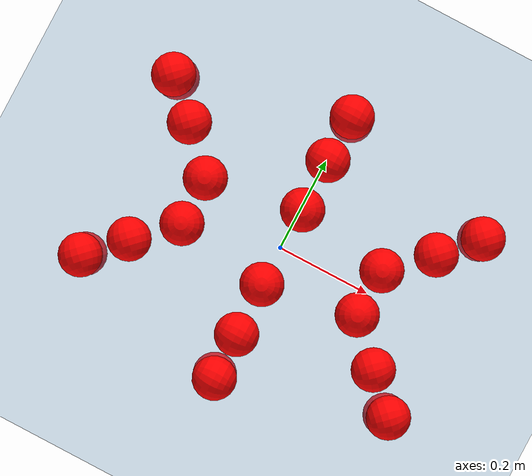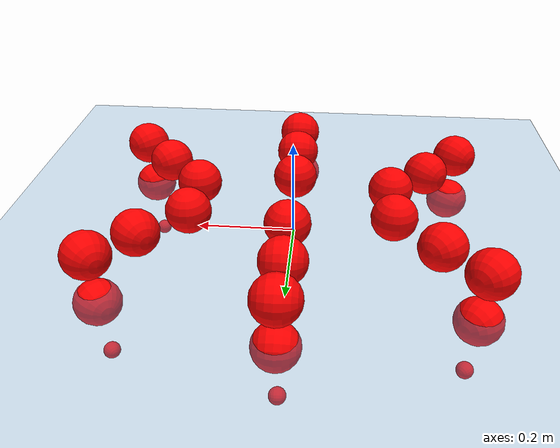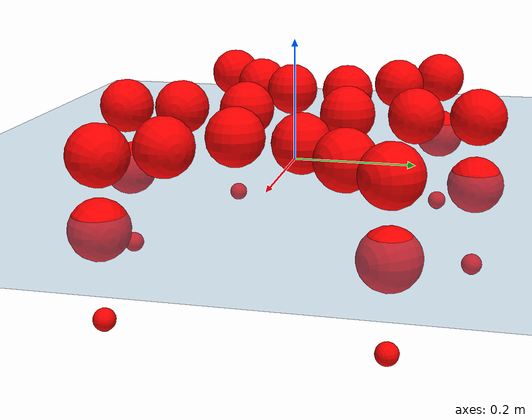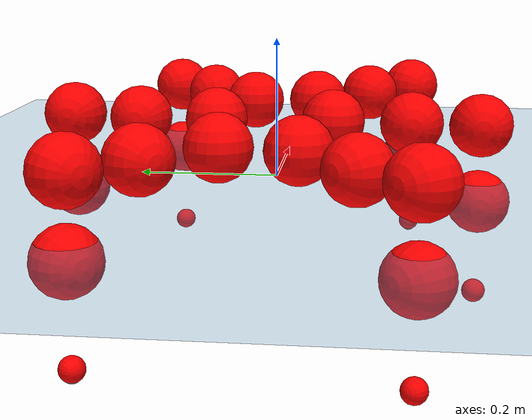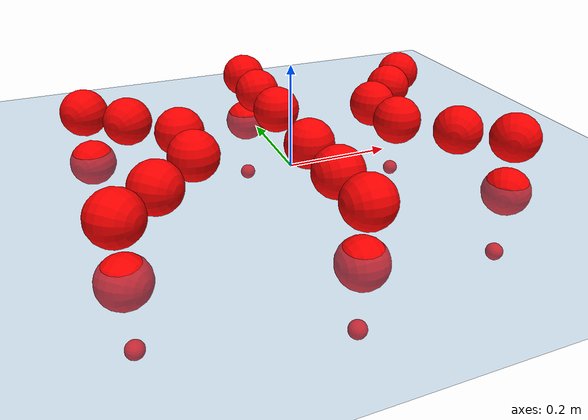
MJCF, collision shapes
<mujoco model="Golem">
  <compiler angle="radian" assetdir="assets" balanceinertia="true" inertiafromgeom="false"/>

  <option timestep="0.005" density="1.2" viscosity="2e-05"/>

  <size nkey="1"/>

  <visual>
    <quality shadowsize="8192"/>
    <map shadowclip="0.5"/>
  </visual>

  <default>
    <default class="/">
      <joint armature="0.01" damping="0.01" frictionloss="0.01"/>
      <geom contype="0" conaffinity="0" group="1" solref="-1000 -80"/>
      <site size="0.01 0.005 0.005" group="5"/>
      <general forcelimited="true" biastype="affine" gainprm="25" biasprm="0 -25 -0.5"/>
      <default class="visual">
        <geom type="mesh" group="2"/>
      </default>
      <default class="collision">
        <geom group="3"/>
      </default>
      <default class="foot">
        <geom size="0.01 0 0" condim="6" group="4" priority="1" solimp="0.015 1 0.01"/>
      </default>
      <default class="reward_collision_sphere">
        <geom group="5" rgba="1 0 0 1"/>
      </default>
    </default>
  </default>

  <asset>
    <texture type="skybox" colorspace="auto" name="//unnamed_texture_0" builtin="gradient" rgb1="0.95 0.95 0.95" rgb2="0.95 0.95 0.95" width="100" height="600"/>
    <texture type="2d" colorspace="auto" name="texplane" builtin="checker" rgb1="0.345 0.575 0.748" rgb2="0.345 0.575 0.748" markrgb="1 1 1" width="512" height="512"/>
    <material name="MatPlane" class="/" texture="texplane" texuniform="true" texrepeat="2 2" specular="0.9"/>
    <mesh name="body" class="/" file="body.stl" scale="0.001 0.001 0.001"/>
    <mesh name="coxa" class="/" file="coxa.stl" scale="0.001 0.001 0.001"/>
    <mesh name="femur" class="/" file="femur.stl" scale="0.001 0.001 0.001"/>
    <mesh name="tibia" class="/" file="tibia.stl" scale="0.001 0.001 0.001"/>
    <mesh name="tarsus" class="/" file="tarsus.stl" scale="0.001 0.001 0.001"/>
  </asset>

  <worldbody>
    <geom name="floor" class="/" size="100 100 0.125" type="plane" group="0" material="MatPlane"/>
    <light name="toplight_shadow" class="/" pos="0 0 5" dir="0.0990148 0.0990148 -0.990148" type="directional" ambient="0.04 0.04 0.04" diffuse="0.55 0.55 0.55" specular="0.12 0.12 0.12"/>
    <light name="toplight_fill" class="/" pos="0 0 5" dir="0.0990148 0.0990148 -0.990148" type="directional" castshadow="false" ambient="0.04 0.04 0.04" diffuse="0.3 0.3 0.3" specular="0.08 0.08 0.08"/>
    <body name="trunk" pos="0.00182657 0.0027499 0.00260109" quat="1 1.99385e-06 7.54824e-05 -6.82609e-05">
      <inertial pos="0.00104478 -0.000577239 -0.00154056" quat="0.999998 -0.000560886 -0.000444025 -0.00160272" mass="5.45701" diaginertia="0.0305984 0.00696981 0.0259717"/>
      <joint name="//unnamed_joint_0" type="free"/>
      <geom name="//unnamed_geom_1" class="/" pos="0 0 0.0773782" quat="1 0 0 0" type="mesh" rgba="0.9 0.9 0.9 1" mesh="body"/>
      <site name="imu" class="/" pos="0.175414 0.0118045 0.125517" size="0.0113423"/>
      <camera name="track" class="/" pos="0 -1.85772 0" quat="0.707107 0.707107 0 0" mode="trackcom"/>
      <camera name="ego_camera" class="/" pos="0.164423 0 0.120903" quat="-0.5 -0.5 0.5 0.5"/>
      <body name="coxa_RR" pos="-0.225406 -0.0784034 0.0774361" quat="0.38264 -0.00034953 -0.000151742 -0.923897">
        <inertial pos="-0.000508399 -0.00147078 -0.00175913" quat="0.9999 0.00866932 -0.007455 0.00831868" mass="0.285298" diaginertia="0.0311124 0.0066472 0.0248541"/>
        <joint name="coxa_joint_RR" class="/" pos="0 0 0" axis="0.00588592 0.00225314 -0.99998" range="-3.14031 3.14703" armature="0.0100211" damping="0" frictionloss="0.0112314"/>
        <geom name="//unnamed_geom_2" class="/" type="mesh" rgba="0.2 0.2 0.2 1" mesh="coxa"/>
        <geom name="//unnamed_geom_3" class="reward_collision_sphere" size="0.0453691" pos="-0.0379438 0 0"/>
        <body name="femur_RR" pos="0.0728254 -0.00154404 -0.00469998" quat="0.500163 -0.499971 0.500011 0.499855">
          <inertial pos="-0.00241815 -0.00182663 4.46153e-05" quat="0.999986 -0.00408162 -0.0030715 0.00102122" mass="0.294168" diaginertia="0.0326592 0.00703373 0.0263381"/>
          <joint name="femur_joint_RR" class="/" pos="0 0 0" axis="-0.00362195 -0.000454532 -0.999993" range="-3.18755 3.08206" armature="0.0110326" damping="0.00939479" frictionloss="0.0127998"/>
          <geom name="//unnamed_geom_4" class="/" type="mesh" rgba="0.9 0.9 0.9 1" mesh="femur"/>
          <geom name="//unnamed_geom_5" class="reward_collision_sphere" size="0.0453691"/>
          <body name="tibia_RR" pos="-0.00391399 -0.102408 0.00169757" quat="3.16031e-06 1 -0.000741246 -5.45871e-06">
            <inertial pos="-0.00242435 3.62233e-05 0.000464658" quat="0.999999 -0.000911996 -0.000625357 -0.000402173" mass="0.291336" diaginertia="0.031658 0.00661862 0.024066"/>
            <joint name="tibia_joint_RR" class="/" pos="0 0 0" axis="0.00778919 -0.00826805 0.999935" range="-3.09586 3.1946" armature="0.0116984" damping="0.00120473" frictionloss="0.0113237"/>
            <geom name="//unnamed_geom_6" class="/" type="mesh" rgba="0.2 0.2 0.2 1" mesh="tibia"/>
            <geom name="//unnamed_geom_7" class="reward_collision_sphere" size="0.0453691"/>
            <body name="tarsus_RR" pos="0.113164 -0.000639655 0.0019214" quat="1 -9.5625e-05 -9.78231e-05 1.34591e-05">
              <inertial pos="0.0788671 0.000343315 0.00237056" quat="0.499571 0.500093 0.498617 0.501715" mass="0.295657" diaginertia="0.0326861 0.00712562 0.02623"/>
              <joint name="tarsus_joint_RR" class="/" pos="0 0 0" axis="-0.00656083 -0.000847517 0.999978" range="-3.18739 3.19539" armature="0.0109551" damping="0.0365782" frictionloss="0.00999519"/>
              <geom name="//unnamed_geom_8" class="/" type="mesh" rgba="0.9 0.9 0.9 1" mesh="tarsus"/>
              <geom name="foot_1" class="foot" size="0.0113312" pos="0.141657 0 0" quat="0 -0.707107 0 0.707107"/>
              <geom name="//unnamed_geom_10" class="reward_collision_sphere" size="0.0453691"/>
              <geom name="//unnamed_geom_11" class="reward_collision_sphere" size="0.0170134" pos="0.135965 0 0"/>
              <site name="foot_1" class="foot" pos="0.141657 0 0" quat="0 -0.707107 0 0.707107" size="0.0113423"/>
            </body>
          </body>
        </body>
      </body>
      <body name="coxa_RM" pos="-7.87294e-05 -0.122265 0.0794778" quat="0.70691 0.000685417 0.00121159 -0.707302">
        <inertial pos="0.00291746 0.000248922 -0.00206825" quat="0.999938 -0.0077713 0.00791167 -0.00139644" mass="0.284725" diaginertia="0.0314001 0.00678736 0.0268109"/>
        <joint name="coxa_joint_RM" class="/" pos="0 0 0" axis="-0.000760523 1.13251e-05 -1" stiffness="0.00695072" range="-3.17336 3.1317" armature="0.0111581" damping="0.00163988" frictionloss="0.0108265"/>
        <geom name="//unnamed_geom_12" class="/" type="mesh" rgba="0.2 0.2 0.2 1" mesh="coxa"/>
        <geom name="//unnamed_geom_13" class="reward_collision_sphere" size="0.0453691" pos="-0.0379438 0 0"/>
        <body name="femur_RM" pos="0.0744346 0.00232579 -0.00132953" quat="0.499403 -0.500253 0.49966 0.500683">
          <inertial pos="0.000191376 -0.00218118 -0.00010591" quat="0.999972 -0.00641828 -0.00230123 -0.00300498" mass="0.299488" diaginertia="0.0328997 0.00680899 0.0264781"/>
          <joint name="femur_joint_RM" class="/" pos="0 0 0" axis="0.0128516 0.00417946 -0.999909" stiffness="0.00914893" range="-3.16103 3.13845" armature="0.0100417" damping="0.0276819" frictionloss="0.0114404"/>
          <geom name="//unnamed_geom_14" class="/" type="mesh" rgba="0.9 0.9 0.9 1" mesh="femur"/>
          <geom name="//unnamed_geom_15" class="reward_collision_sphere" size="0.0453691"/>
          <body name="tibia_RM" pos="0.00124656 -0.0983276 0.00144746" quat="-2.11072e-05 1 -0.000255058 0.000137093">
            <inertial pos="0.00286733 -0.00171361 -0.000335979" quat="0.999934 -0.00653652 -0.00875553 -0.00353274" mass="0.277382" diaginertia="0.0316294 0.00689435 0.0255198"/>
            <joint name="tibia_joint_RM" class="/" pos="0 0 0" axis="0.000368843 -0.000246163 1" range="-3.18553 3.158" armature="0.0113209" damping="0.013576" frictionloss="0.0114411"/>
            <geom name="//unnamed_geom_16" class="/" type="mesh" rgba="0.2 0.2 0.2 1" mesh="tibia"/>
            <geom name="//unnamed_geom_17" class="reward_collision_sphere" size="0.0453691"/>
            <body name="tarsus_RM" pos="0.110507 -0.00015198 0.00313094" quat="1 5.46962e-05 0.000231131 -9.40958e-06">
              <inertial pos="0.0765829 -0.0024563 0.0029455" quat="0.499759 0.499916 0.494256 0.505999" mass="0.298973" diaginertia="0.031502 0.006696 0.0250332"/>
              <joint name="tarsus_joint_RM" class="/" pos="0 0 0" axis="0.00203933 0.00163137 0.999997" range="-3.08311 3.12372" armature="0.0124834" damping="0.0130573" frictionloss="0.0110695"/>
              <geom name="//unnamed_geom_18" class="/" type="mesh" rgba="0.9 0.9 0.9 1" mesh="tarsus"/>
              <geom name="foot_2" class="foot" size="0.0116675" pos="0.141657 0 0" quat="0 -0.707107 0 0.707107"/>
              <geom name="//unnamed_geom_20" class="reward_collision_sphere" size="0.0453691"/>
              <geom name="//unnamed_geom_21" class="reward_collision_sphere" size="0.0170134" pos="0.135965 0 0"/>
              <site name="foot_2" class="foot" pos="0.141657 0 0" quat="0 -0.707107 0 0.707107" size="0.0113423"/>
            </body>
          </body>
        </body>
      </body>
      <body name="coxa_RF" pos="0.224144 -0.0757161 0.0792451" quat="0.923928 0.000423447 0.000405046 -0.382565">
        <inertial pos="-0.00083125 0.00265991 -0.00050099" quat="0.999999 -4.45442e-05 -0.000930466 0.00114923" mass="0.288501" diaginertia="0.0324386 0.00699194 0.0249741"/>
        <joint name="coxa_joint_RF" class="/" pos="0 0 0" axis="0.00287829 -0.000927992 -0.999995" range="-3.1492 3.14642" armature="0.0127873" damping="0.0115633" frictionloss="0.0107974"/>
        <geom name="//unnamed_geom_22" class="/" type="mesh" rgba="0.2 0.2 0.2 1" mesh="coxa"/>
        <geom name="//unnamed_geom_23" class="reward_collision_sphere" size="0.0453691" pos="-0.0379438 0 0"/>
        <body name="femur_RF" pos="0.0769119 -0.00144722 -0.000201291" quat="0.500329 -0.49937 0.500411 0.499889">
          <inertial pos="0.00205923 -0.00292627 -0.000778519" quat="0.999946 -0.00391128 0.000664845 0.00955865" mass="0.282232" diaginertia="0.0323378 0.00647891 0.0257422"/>
          <joint name="femur_joint_RF" class="/" pos="0 0 0" axis="9.46304e-05 -2.86966e-05 -1" stiffness="0.00424362" range="-3.17325 3.16032" armature="0.00981172" damping="0.0100507" frictionloss="0.0128924"/>
          <geom name="//unnamed_geom_24" class="/" type="mesh" rgba="0.9 0.9 0.9 1" mesh="femur"/>
          <geom name="//unnamed_geom_25" class="reward_collision_sphere" size="0.0453691"/>
          <body name="tibia_RF" pos="-0.00243717 -0.100375 0.000742017" quat="-5.72772e-05 1 1.63411e-05 -7.25339e-05">
            <inertial pos="-0.00122004 0.00083596 7.65379e-05" quat="1 -0.000280206 -0.000808113 -0.000145938" mass="0.299413" diaginertia="0.0312431 0.0071544 0.025534"/>
            <joint name="tibia_joint_RF" class="/" pos="0 0 0" axis="0.00621422 0.00408802 0.999972" range="-3.14962 3.10636" armature="0.0105096" damping="0.0051082" frictionloss="0.0112412"/>
            <geom name="//unnamed_geom_26" class="/" type="mesh" rgba="0.2 0.2 0.2 1" mesh="tibia"/>
            <geom name="//unnamed_geom_27" class="reward_collision_sphere" size="0.0453691"/>
            <body name="tarsus_RF" pos="0.107902 0.0016806 0.00303369" quat="1 0.000498352 -0.000825701 -0.000232924">
              <inertial pos="0.0753666 -4.01615e-05 4.56625e-05" quat="0.50141 0.501133 0.497855 0.499594" mass="0.294661" diaginertia="0.0320893 0.00690571 0.0266202"/>
              <joint name="tarsus_joint_RF" class="/" pos="0 0 0" axis="0.00209883 -0.0151964 0.999882" range="-3.1765 3.13061" armature="0.0128551" damping="0.0143508" frictionloss="0.00993088"/>
              <geom name="//unnamed_geom_28" class="/" type="mesh" rgba="0.9 0.9 0.9 1" mesh="tarsus"/>
              <geom name="foot_3" class="foot" size="0.0124194" pos="0.141657 0 0" quat="0 -0.707107 0 0.707107"/>
              <geom name="//unnamed_geom_30" class="reward_collision_sphere" size="0.0453691"/>
              <geom name="//unnamed_geom_31" class="reward_collision_sphere" size="0.0170134" pos="0.135965 0 0"/>
              <site name="foot_3" class="foot" pos="0.141657 0 0" quat="0 -0.707107 0 0.707107" size="0.0113423"/>
            </body>
          </body>
        </body>
      </body>
      <body name="coxa_LR" pos="-0.226594 0.0775645 0.079239" quat="0.382494 6.44223e-05 -0.000304524 0.923958">
        <inertial pos="-0.00194861 0.00216916 -0.000747283" quat="0.999968 0.00157694 0.00506563 -0.00598225" mass="0.291381" diaginertia="0.033377 0.00724761 0.0271403"/>
        <joint name="coxa_joint_LR" class="/" pos="0 0 0" axis="-0.00721135 0.00928826 -0.999931" stiffness="0.0113153" range="-3.15389 3.08799" armature="0.00978614" damping="0" frictionloss="0.00982626"/>
        <geom name="//unnamed_geom_32" class="/" type="mesh" rgba="0.2 0.2 0.2 1" mesh="coxa"/>
        <geom name="//unnamed_geom_33" class="reward_collision_sphere" size="0.0453691" pos="-0.0379438 0 0"/>
        <body name="femur_LR" pos="0.0785973 -0.00241252 -8.04426e-05" quat="0.499852 -0.499922 0.500306 0.499919">
          <inertial pos="-0.00165868 -0.00114064 0.000843906" quat="0.999912 -0.00829336 -0.00497824 0.00907942" mass="0.291297" diaginertia="0.0325439 0.00713851 0.0261457"/>
          <joint name="femur_joint_LR" class="/" pos="0 0 0" axis="-0.0103548 0.00936808 0.999903" range="-3.12069 3.15853" armature="0.0112641" damping="0" frictionloss="0.0105726"/>
          <geom name="//unnamed_geom_34" class="/" type="mesh" rgba="0.9 0.9 0.9 1" mesh="femur"/>
          <geom name="//unnamed_geom_35" class="reward_collision_sphere" size="0.0453691"/>
          <body name="tibia_LR" pos="-0.00211181 -0.100436 0.00193755" quat="0.000744696 0.999999 -0.000362303 0.000762682">
            <inertial pos="-0.000683056 -0.000684095 0.000514461" quat="0.999995 -0.0025821 0.00170408 0.000363798" mass="0.305497" diaginertia="0.0330282 0.00705173 0.026957"/>
            <joint name="tibia_joint_LR" class="/" pos="0 0 0" axis="0.0116807 0.000446635 -0.999932" range="-3.19047 3.08526" armature="0.0118751" damping="0.00126274" frictionloss="0.0107696"/>
            <geom name="//unnamed_geom_36" class="/" type="mesh" rgba="0.2 0.2 0.2 1" mesh="tibia"/>
            <geom name="//unnamed_geom_37" class="reward_collision_sphere" size="0.0453691"/>
            <body name="tarsus_LR" pos="0.109685 0.000650036 0.00293881" quat="0.999999 -0.000711802 0.000294167 0.000660236">
              <inertial pos="0.077878 0.000196276 -0.00139267" quat="0.501352 0.497967 0.499736 0.500939" mass="0.285722" diaginertia="0.033055 0.00677024 0.0265474"/>
              <joint name="tarsus_joint_LR" class="/" pos="0 0 0" axis="0.00747527 -0.00503823 -0.999959" range="-3.19059 3.0884" armature="0.010771" damping="0" frictionloss="0.0121827"/>
              <geom name="//unnamed_geom_38" class="/" type="mesh" rgba="0.9 0.9 0.9 1" mesh="tarsus"/>
              <geom name="foot_4" class="foot" size="0.01259" pos="0.141657 0 0" quat="0.707107 0 -0.707107 0"/>
              <geom name="//unnamed_geom_40" class="reward_collision_sphere" size="0.0453691"/>
              <geom name="//unnamed_geom_41" class="reward_collision_sphere" size="0.0170134" pos="0.135965 0 0"/>
              <site name="foot_4" class="foot" pos="0.141657 0 0" quat="0.707107 0 -0.707107 0" size="0.0113423"/>
            </body>
          </body>
        </body>
      </body>
      <body name="coxa_LM" pos="0.00230987 0.123685 0.0796352" quat="0.707992 0.00059361 -0.000350239 0.70622">
        <inertial pos="0.000955136 -0.00157303 -0.00160944" quat="0.9999 0.0122256 0.0026057 0.00656019" mass="0.285887" diaginertia="0.0307053 0.00670206 0.0254404"/>
        <joint name="coxa_joint_LM" class="/" pos="0 0 0" axis="0.00341388 0.00186029 -0.999992" range="-3.08812 3.11884" armature="0.0125907" damping="0.0241142" frictionloss="0.0128673"/>
        <geom name="//unnamed_geom_42" class="/" type="mesh" rgba="0.2 0.2 0.2 1" mesh="coxa"/>
        <geom name="//unnamed_geom_43" class="reward_collision_sphere" size="0.0453691" pos="-0.0379438 0 0"/>
        <body name="femur_LM" pos="0.0733719 0.00192604 0.00108502" quat="0.499699 -0.499263 0.500006 0.50103">
          <inertial pos="0.00238898 -0.00267595 0.00126783" quat="0.999957 -0.00831751 -0.00355127 0.00222411" mass="0.293901" diaginertia="0.0336747 0.0068878 0.0265992"/>
          <joint name="femur_joint_LM" class="/" pos="0 0 0" axis="0.0154402 -0.00170079 0.999879" range="-3.14605 3.08597" armature="0.0127627" damping="0" frictionloss="0.0115699"/>
          <geom name="//unnamed_geom_44" class="/" type="mesh" rgba="0.9 0.9 0.9 1" mesh="femur"/>
          <geom name="//unnamed_geom_45" class="reward_collision_sphere" size="0.0453691"/>
          <body name="tibia_LM" pos="-0.00318631 -0.0993823 -0.00203254" quat="-0.000392129 1 -0.000448246 -0.000257408">
            <inertial pos="1.98333e-05 -0.00206868 0.0011862" quat="0.9999 -0.000816232 0.0140929 0.00113756" mass="0.285795" diaginertia="0.0328865 0.00710537 0.0262415"/>
            <joint name="tibia_joint_LM" class="/" pos="0 0 0" axis="-0.00301813 -0.00183169 -0.999994" range="-3.13015 3.15928" armature="0.0124927" damping="0.00821196" frictionloss="0.00987381"/>
            <geom name="//unnamed_geom_46" class="/" type="mesh" rgba="0.2 0.2 0.2 1" mesh="tibia"/>
            <geom name="//unnamed_geom_47" class="reward_collision_sphere" size="0.0453691"/>
            <body name="tarsus_LM" pos="0.110444 -0.000163716 0.00249292" quat="1 6.44201e-05 -0.000266837 -0.000386269">
              <inertial pos="0.0729878 -0.000275581 -0.00251895" quat="0.499961 0.500414 0.499826 0.499799" mass="0.297265" diaginertia="0.0311071 0.00680112 0.026302"/>
              <joint name="tarsus_joint_LM" class="/" pos="0 0 0" axis="0.00355391 -0.00367046 -0.999987" range="-3.11338 3.14506" armature="0.0126952" damping="0.00797499" frictionloss="0.0124139"/>
              <geom name="//unnamed_geom_48" class="/" type="mesh" rgba="0.9 0.9 0.9 1" mesh="tarsus"/>
              <geom name="foot_5" class="foot" size="0.012229" pos="0.141657 0 0" quat="0.707107 0 -0.707107 0"/>
              <geom name="//unnamed_geom_50" class="reward_collision_sphere" size="0.0453691"/>
              <geom name="//unnamed_geom_51" class="reward_collision_sphere" size="0.0170134" pos="0.135965 0 0"/>
              <site name="foot_5" class="foot" pos="0.141657 0 0" quat="0.707107 0 -0.707107 0" size="0.0113423"/>
            </body>
          </body>
        </body>
      </body>
      <body name="coxa_LF" pos="0.226505 0.0794182 0.0757184" quat="0.924005 -0.00016676 0.000490062 0.38238">
        <inertial pos="0.000537108 -0.000769058 -0.00170947" quat="0.999899 -0.00262021 0.0139089 -0.000926599" mass="0.276008" diaginertia="0.0313356 0.00680988 0.0255525"/>
        <joint name="coxa_joint_LF" class="/" pos="0 0 0" axis="-0.0035463 0.000346993 -0.999994" stiffness="0.0179534" range="-3.18438 3.16471" armature="0.0125346" damping="0.0114211" frictionloss="0.00973237"/>
        <geom name="//unnamed_geom_52" class="/" type="mesh" rgba="0.2 0.2 0.2 1" mesh="coxa"/>
        <geom name="//unnamed_geom_53" class="reward_collision_sphere" size="0.0453691" pos="-0.0379438 0 0"/>
        <body name="femur_LF" pos="0.0756638 -0.00181103 0.000432894" quat="0.499206 -0.500167 0.500224 0.500402">
          <inertial pos="0.0014388 -0.000349965 -0.000852334" quat="0.999996 0.000770198 -3.64214e-05 0.00289661" mass="0.290294" diaginertia="0.0319068 0.00681662 0.0246671"/>
          <joint name="femur_joint_LF" class="/" pos="0 0 0" axis="-0.00252676 -0.000270842 0.999997" range="-3.08362 3.13405" armature="0.012702" damping="0.0177211" frictionloss="0.0110996"/>
          <geom name="//unnamed_geom_54" class="/" type="mesh" rgba="0.9 0.9 0.9 1" mesh="femur"/>
          <geom name="//unnamed_geom_55" class="reward_collision_sphere" size="0.0453691"/>
          <body name="tibia_LF" pos="-0.00101673 -0.0990363 0.00303311" quat="-0.000264054 1 0.000272612 -0.000297238">
            <inertial pos="-0.000168492 0.00287793 0.00212986" quat="0.999992 0.003839 -0.000171619 -0.000900741" mass="0.284518" diaginertia="0.0321399 0.00685189 0.0259047"/>
            <joint name="tibia_joint_LF" class="/" pos="0 0 0" axis="-0.00192017 0.00347808 -0.999992" range="-3.13965 3.1191" armature="0.00961974" damping="0" frictionloss="0.0127539"/>
            <geom name="//unnamed_geom_56" class="/" type="mesh" rgba="0.2 0.2 0.2 1" mesh="tibia"/>
            <geom name="//unnamed_geom_57" class="reward_collision_sphere" size="0.0453691"/>
            <body name="tarsus_LF" pos="0.113785 0.00193438 0.00121945" quat="1 0.000851019 0.000425154 -7.71762e-06">
              <inertial pos="0.0770404 -0.000963697 -0.00236675" quat="0.510808 0.491353 0.500265 0.497376" mass="0.304238" diaginertia="0.0322675 0.00721493 0.0268849"/>
              <joint name="tarsus_joint_LF" class="/" pos="0 0 0" axis="0.00716079 -0.00992794 -0.999925" stiffness="0.0337523" range="-3.19385 3.18517" armature="0.0112951" damping="0.0200491" frictionloss="0.0119113"/>
              <geom name="//unnamed_geom_58" class="/" type="mesh" rgba="0.9 0.9 0.9 1" mesh="tarsus"/>
              <geom name="foot_6" class="foot" size="0.0108204" pos="0.141657 0 0" quat="0.707107 0 -0.707107 0"/>
              <geom name="//unnamed_geom_60" class="reward_collision_sphere" size="0.0453691"/>
              <geom name="//unnamed_geom_61" class="reward_collision_sphere" size="0.0170134" pos="0.135965 0 0"/>
              <site name="foot_6" class="foot" pos="0.141657 0 0" quat="0.707107 0 -0.707107 0" size="0.0113423"/>
            </body>
          </body>
        </body>
      </body>
    </body>
  </worldbody>

  <contact>
    <pair class="/" geom1="floor" geom2="foot_1" name="//unnamed_contact_0"/>
    <pair class="/" geom1="floor" geom2="foot_2" name="//unnamed_contact_1"/>
    <pair class="/" geom1="floor" geom2="foot_3" name="//unnamed_contact_2"/>
    <pair class="/" geom1="floor" geom2="foot_4" name="//unnamed_contact_3"/>
    <pair class="/" geom1="floor" geom2="foot_5" name="//unnamed_contact_4"/>
    <pair class="/" geom1="floor" geom2="foot_6" name="//unnamed_contact_5"/>
  </contact>

  <actuator>
    <general name="coxa_joint_RR" class="/" joint="coxa_joint_RR" forcerange="-7.95253 7.95253" gainprm="26.7856" biasprm="0 -26.7856 -0.603204"/>
    <general name="femur_joint_RR" class="/" joint="femur_joint_RR" forcerange="-8.38393 8.38393" gainprm="26.7856" biasprm="0 -26.7856 -0.603204"/>
    <general name="tibia_joint_RR" class="/" joint="tibia_joint_RR" forcerange="-8.44835 8.44835" gainprm="26.7856" biasprm="0 -26.7856 -0.603204"/>
    <general name="tarsus_joint_RR" class="/" joint="tarsus_joint_RR" forcerange="-9.14081 9.14081" gainprm="26.7856" biasprm="0 -26.7856 -0.603204"/>
    <general name="coxa_joint_RM" class="/" joint="coxa_joint_RM" forcerange="-7.78125 7.78125" gainprm="26.7856" biasprm="0 -26.7856 -0.603204"/>
    <general name="femur_joint_RM" class="/" joint="femur_joint_RM" forcerange="-8.33806 8.33806" gainprm="26.7856" biasprm="0 -26.7856 -0.603204"/>
    <general name="tibia_joint_RM" class="/" joint="tibia_joint_RM" forcerange="-7.41312 7.41312" gainprm="26.7856" biasprm="0 -26.7856 -0.603204"/>
    <general name="tarsus_joint_RM" class="/" joint="tarsus_joint_RM" forcerange="-7.95049 7.95049" gainprm="26.7856" biasprm="0 -26.7856 -0.603204"/>
    <general name="coxa_joint_RF" class="/" joint="coxa_joint_RF" forcerange="-7.66292 7.66292" gainprm="26.7856" biasprm="0 -26.7856 -0.603204"/>
    <general name="femur_joint_RF" class="/" joint="femur_joint_RF" forcerange="-7.45981 7.45981" gainprm="26.7856" biasprm="0 -26.7856 -0.603204"/>
    <general name="tibia_joint_RF" class="/" joint="tibia_joint_RF" forcerange="-7.86857 7.86857" gainprm="26.7856" biasprm="0 -26.7856 -0.603204"/>
    <general name="tarsus_joint_RF" class="/" joint="tarsus_joint_RF" forcerange="-9.06739 9.06739" gainprm="26.7856" biasprm="0 -26.7856 -0.603204"/>
    <general name="coxa_joint_LR" class="/" joint="coxa_joint_LR" forcerange="-8.30668 8.30668" gainprm="26.7856" biasprm="0 -26.7856 -0.603204"/>
    <general name="femur_joint_LR" class="/" joint="femur_joint_LR" forcerange="-8.08127 8.08127" gainprm="26.7856" biasprm="0 -26.7856 -0.603204"/>
    <general name="tibia_joint_LR" class="/" joint="tibia_joint_LR" forcerange="-8.48291 8.48291" gainprm="26.7856" biasprm="0 -26.7856 -0.603204"/>
    <general name="tarsus_joint_LR" class="/" joint="tarsus_joint_LR" forcerange="-8.75066 8.75066" gainprm="26.7856" biasprm="0 -26.7856 -0.603204"/>
    <general name="coxa_joint_LM" class="/" joint="coxa_joint_LM" forcerange="-9.08653 9.08653" gainprm="26.7856" biasprm="0 -26.7856 -0.603204"/>
    <general name="femur_joint_LM" class="/" joint="femur_joint_LM" forcerange="-8.32033 8.32033" gainprm="26.7856" biasprm="0 -26.7856 -0.603204"/>
    <general name="tibia_joint_LM" class="/" joint="tibia_joint_LM" forcerange="-8.60621 8.60621" gainprm="26.7856" biasprm="0 -26.7856 -0.603204"/>
    <general name="tarsus_joint_LM" class="/" joint="tarsus_joint_LM" forcerange="-8.05964 8.05964" gainprm="26.7856" biasprm="0 -26.7856 -0.603204"/>
    <general name="coxa_joint_LF" class="/" joint="coxa_joint_LF" forcerange="-7.92177 7.92177" gainprm="26.7856" biasprm="0 -26.7856 -0.603204"/>
    <general name="femur_joint_LF" class="/" joint="femur_joint_LF" forcerange="-8.29739 8.29739" gainprm="26.7856" biasprm="0 -26.7856 -0.603204"/>
    <general name="tibia_joint_LF" class="/" joint="tibia_joint_LF" forcerange="-8.30413 8.30413" gainprm="26.7856" biasprm="0 -26.7856 -0.603204"/>
    <general name="tarsus_joint_LF" class="/" joint="tarsus_joint_LF" forcerange="-7.45232 7.45232" gainprm="26.7856" biasprm="0 -26.7856 -0.603204"/>
  </actuator>

  <sensor>
    <gyro site="imu" name="imu_angular_velocity"/>
    <velocimeter site="imu" name="imu_linear_velocity"/>
    <framelinvel objtype="site" objname="foot_1" name="foot_1_global_linear_velocity"/>
    <framelinvel objtype="site" objname="foot_2" name="foot_2_global_linear_velocity"/>
    <framelinvel objtype="site" objname="foot_3" name="foot_3_global_linear_velocity"/>
    <framelinvel objtype="site" objname="foot_4" name="foot_4_global_linear_velocity"/>
    <framelinvel objtype="site" objname="foot_5" name="foot_5_global_linear_velocity"/>
    <framelinvel objtype="site" objname="foot_6" name="foot_6_global_linear_velocity"/>
  </sensor>

  <keyframe>
    <key name="home" qpos="0 0 0.1457 1 0 0 0 0 0 0 0 0 0 0 0 0 0 0 0 0 0 0 0 0 0 0 0 0 0 0 0"/>
  </keyframe>
</mujoco>
